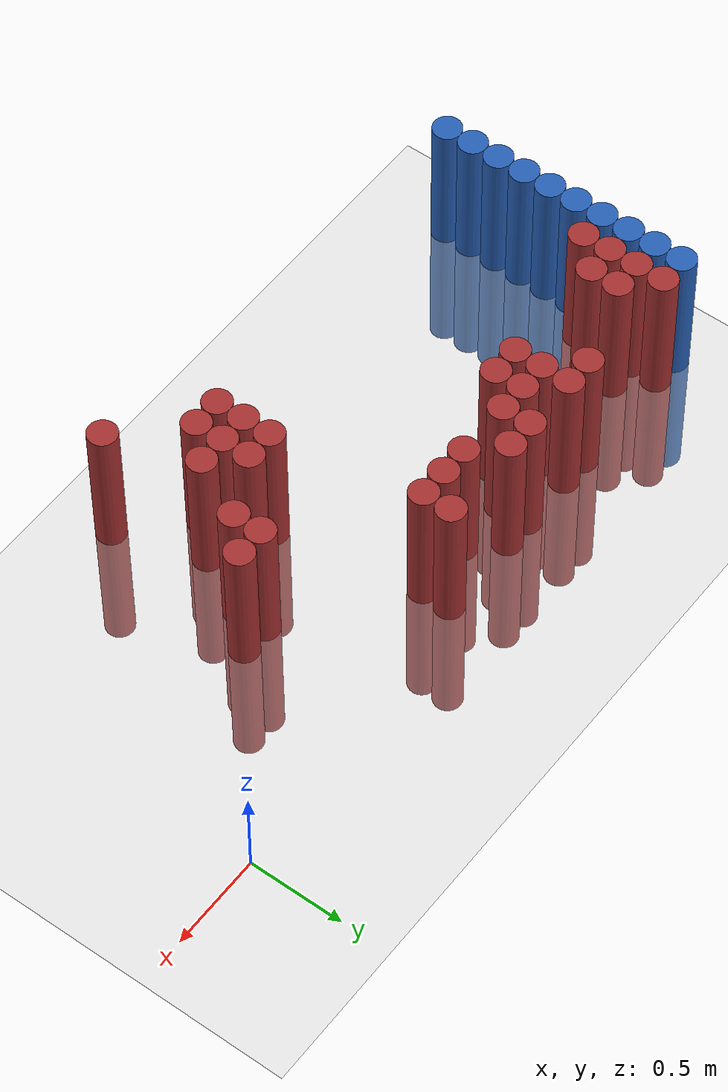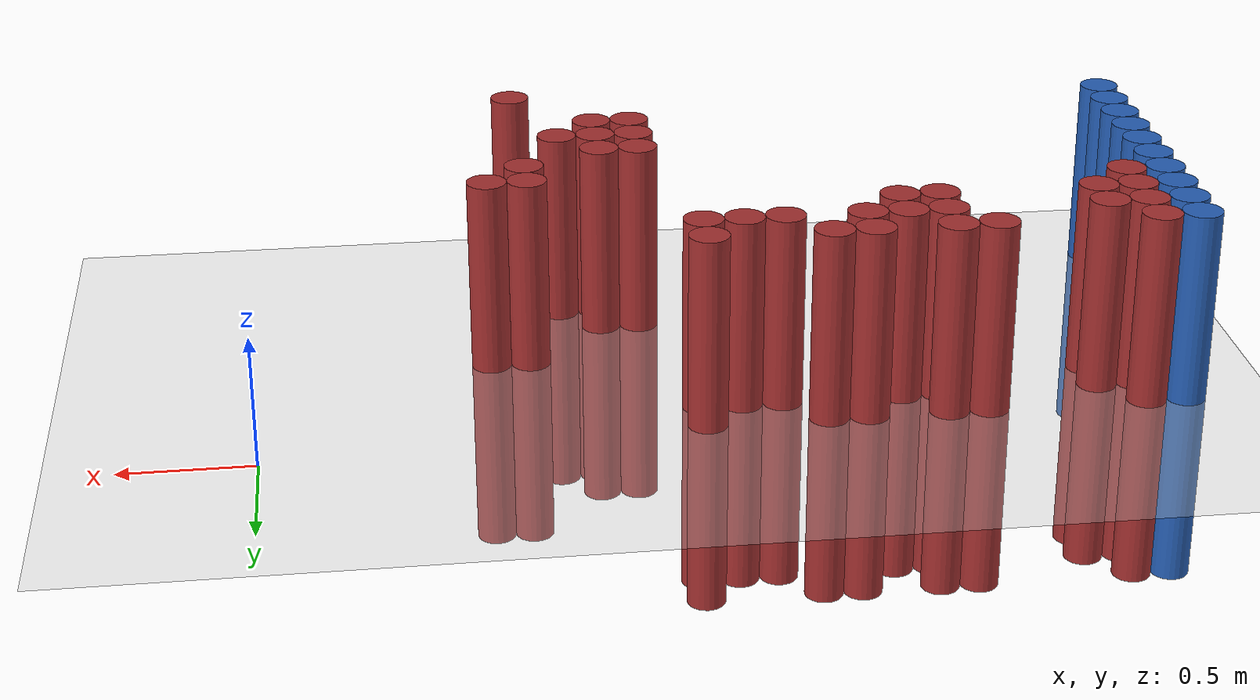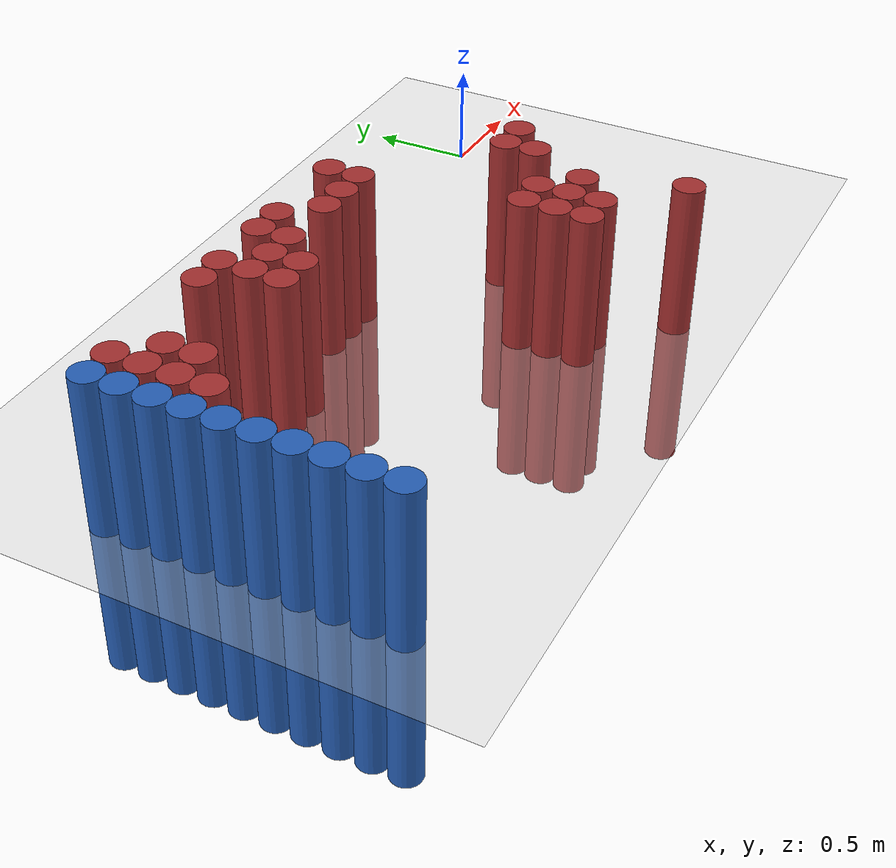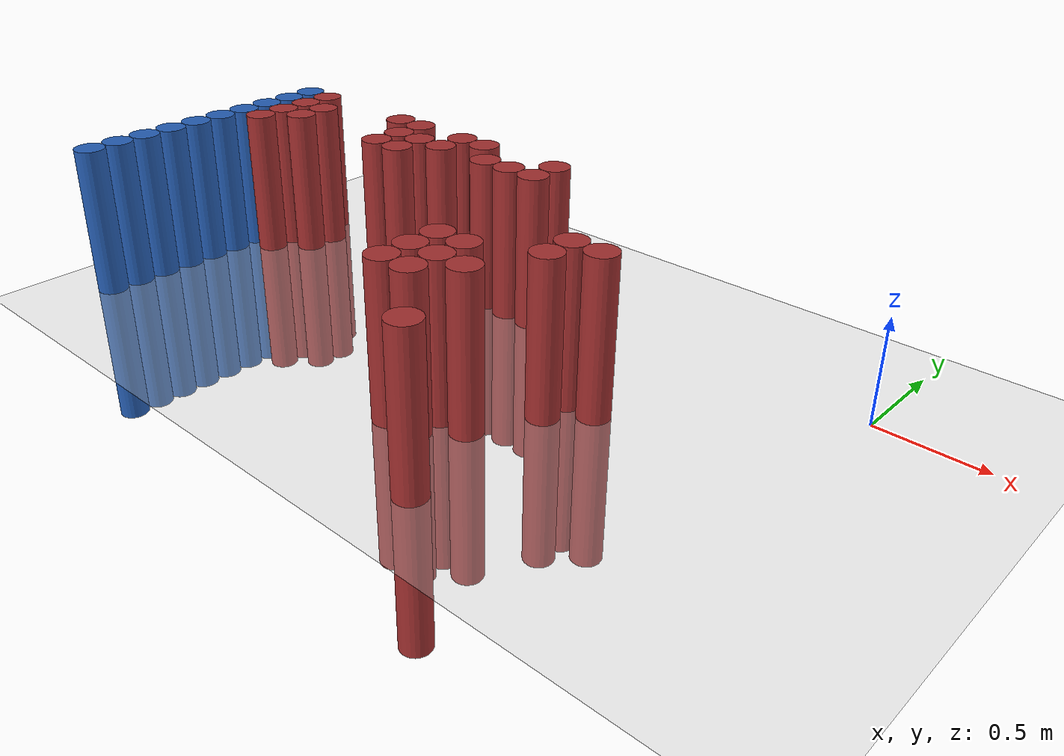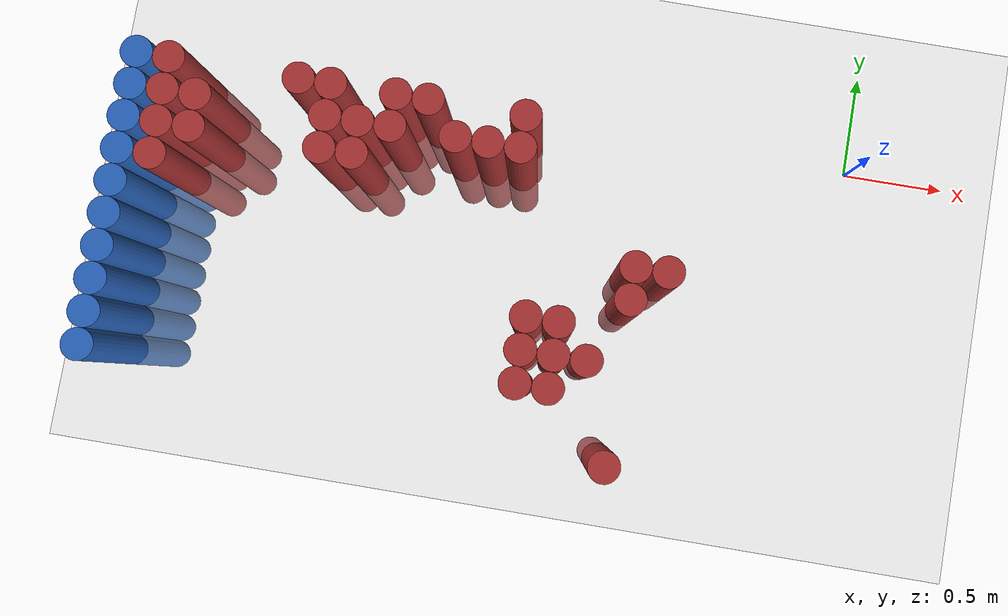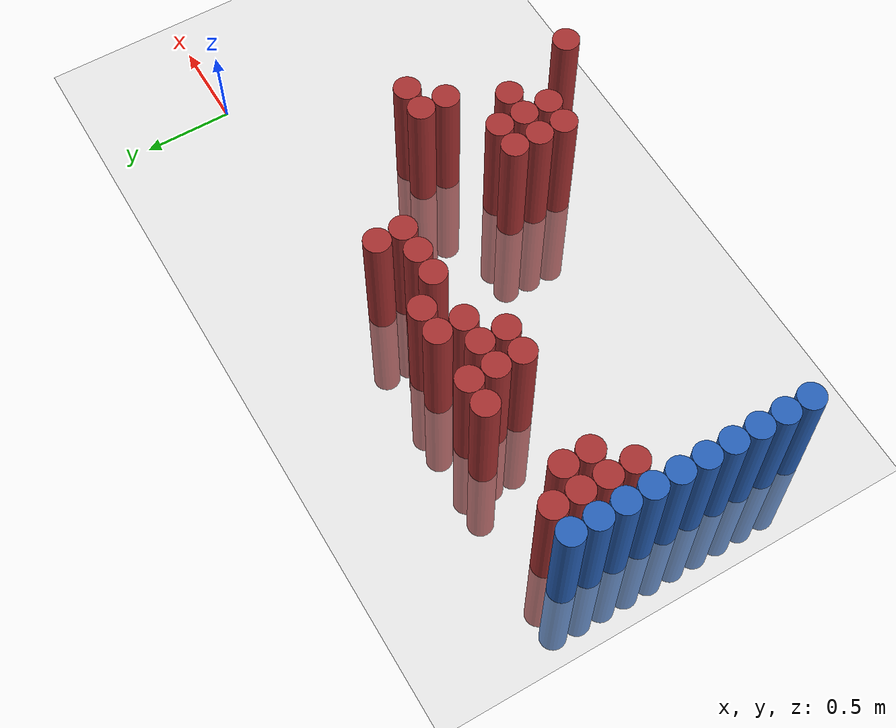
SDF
<sdf version="1.6">
 <world name="default">
  <model name="ground_plane">
   <static>1</static>
   <link name="link">
    <collision name="collision">
     <geometry><plane><normal>0 0 1</normal><size>100 100</size></plane></geometry>
     <surface><friction><ode><mu>100</mu><mu2>50</mu2></ode></friction></surface>
    </collision>
    <visual name="visual">
     <cast_shadows>0</cast_shadows>
     <geometry><plane><normal>0 0 1</normal><size>100 100</size></plane></geometry>
     <material>
      <script><uri>file://media/materials/scripts/gazebo.material</uri><name>Gazebo/Grey</name></script>
     </material>
    </visual>
   </link>
  </model>
  <model name="unit_cylinder_95">
   <static>1</static>
   <pose>-3.425000 -1.475000 0.000000 0.000000 0.000000 0.000000</pose>
   <link name="link">
    <inertial>
     <mass>1</mass>
     <inertia><ixx>0.145833</ixx><ixy>0</ixy><ixz>0</ixz><iyy>0.145833</iyy><iyz>0</iyz><izz>0.125</izz></inertia>
    </inertial>
    <collision name="collision">
     <geometry><cylinder><radius>0.075000</radius><length>1.5</length></cylinder></geometry>
    </collision>
    <visual name="visual">
     <geometry><cylinder><radius>0.075000</radius><length>1.5</length></cylinder></geometry>
     <material>
      <ambient>0.152000 0.379000 0.720000 1</ambient>
      <diffuse>0.152000 0.379000 0.720000 1</diffuse>
     </material>
     <material>
      <script><name>Gazebo/Grey</name><uri>file://media/materials/scripts/gazebo.material</uri></script>
     </material>
    </visual>
   </link>
  </model>
  <model name="unit_cylinder_97">
   <static>1</static>
   <pose>-3.425000 -1.325000 0.000000 0.000000 0.000000 0.000000</pose>
   <link name="link">
    <inertial>
     <mass>1</mass>
     <inertia><ixx>0.145833</ixx><ixy>0</ixy><ixz>0</ixz><iyy>0.145833</iyy><iyz>0</iyz><izz>0.125</izz></inertia>
    </inertial>
    <collision name="collision">
     <geometry><cylinder><radius>0.075000</radius><length>1.5</length></cylinder></geometry>
    </collision>
    <visual name="visual">
     <geometry><cylinder><radius>0.075000</radius><length>1.5</length></cylinder></geometry>
     <material>
      <ambient>0.152000 0.379000 0.720000 1</ambient>
      <diffuse>0.152000 0.379000 0.720000 1</diffuse>
     </material>
     <material>
      <script><name>Gazebo/Grey</name><uri>file://media/materials/scripts/gazebo.material</uri></script>
     </material>
    </visual>
   </link>
  </model>
  <model name="unit_cylinder_99">
   <static>1</static>
   <pose>-3.425000 -1.175000 0.000000 0.000000 0.000000 0.000000</pose>
   <link name="link">
    <inertial>
     <mass>1</mass>
     <inertia><ixx>0.145833</ixx><ixy>0</ixy><ixz>0</ixz><iyy>0.145833</iyy><iyz>0</iyz><izz>0.125</izz></inertia>
    </inertial>
    <collision name="collision">
     <geometry><cylinder><radius>0.075000</radius><length>1.5</length></cylinder></geometry>
    </collision>
    <visual name="visual">
     <geometry><cylinder><radius>0.075000</radius><length>1.5</length></cylinder></geometry>
     <material>
      <ambient>0.152000 0.379000 0.720000 1</ambient>
      <diffuse>0.152000 0.379000 0.720000 1</diffuse>
     </material>
     <material>
      <script><name>Gazebo/Grey</name><uri>file://media/materials/scripts/gazebo.material</uri></script>
     </material>
    </visual>
   </link>
  </model>
  <model name="unit_cylinder_101">
   <static>1</static>
   <pose>-3.425000 -1.025000 0.000000 0.000000 0.000000 0.000000</pose>
   <link name="link">
    <inertial>
     <mass>1</mass>
     <inertia><ixx>0.145833</ixx><ixy>0</ixy><ixz>0</ixz><iyy>0.145833</iyy><iyz>0</iyz><izz>0.125</izz></inertia>
    </inertial>
    <collision name="collision">
     <geometry><cylinder><radius>0.075000</radius><length>1.5</length></cylinder></geometry>
    </collision>
    <visual name="visual">
     <geometry><cylinder><radius>0.075000</radius><length>1.5</length></cylinder></geometry>
     <material>
      <ambient>0.152000 0.379000 0.720000 1</ambient>
      <diffuse>0.152000 0.379000 0.720000 1</diffuse>
     </material>
     <material>
      <script><name>Gazebo/Grey</name><uri>file://media/materials/scripts/gazebo.material</uri></script>
     </material>
    </visual>
   </link>
  </model>
  <model name="unit_cylinder_103">
   <static>1</static>
   <pose>-3.425000 -0.875000 0.000000 0.000000 0.000000 0.000000</pose>
   <link name="link">
    <inertial>
     <mass>1</mass>
     <inertia><ixx>0.145833</ixx><ixy>0</ixy><ixz>0</ixz><iyy>0.145833</iyy><iyz>0</iyz><izz>0.125</izz></inertia>
    </inertial>
    <collision name="collision">
     <geometry><cylinder><radius>0.075000</radius><length>1.5</length></cylinder></geometry>
    </collision>
    <visual name="visual">
     <geometry><cylinder><radius>0.075000</radius><length>1.5</length></cylinder></geometry>
     <material>
      <ambient>0.152000 0.379000 0.720000 1</ambient>
      <diffuse>0.152000 0.379000 0.720000 1</diffuse>
     </material>
     <material>
      <script><name>Gazebo/Grey</name><uri>file://media/materials/scripts/gazebo.material</uri></script>
     </material>
    </visual>
   </link>
  </model>
  <model name="unit_cylinder_105">
   <static>1</static>
   <pose>-3.425000 -0.725000 0.000000 0.000000 0.000000 0.000000</pose>
   <link name="link">
    <inertial>
     <mass>1</mass>
     <inertia><ixx>0.145833</ixx><ixy>0</ixy><ixz>0</ixz><iyy>0.145833</iyy><iyz>0</iyz><izz>0.125</izz></inertia>
    </inertial>
    <collision name="collision">
     <geometry><cylinder><radius>0.075000</radius><length>1.5</length></cylinder></geometry>
    </collision>
    <visual name="visual">
     <geometry><cylinder><radius>0.075000</radius><length>1.5</length></cylinder></geometry>
     <material>
      <ambient>0.152000 0.379000 0.720000 1</ambient>
      <diffuse>0.152000 0.379000 0.720000 1</diffuse>
     </material>
     <material>
      <script><name>Gazebo/Grey</name><uri>file://media/materials/scripts/gazebo.material</uri></script>
     </material>
    </visual>
   </link>
  </model>
  <model name="unit_cylinder_107">
   <static>1</static>
   <pose>-3.425000 -0.575000 0.000000 0.000000 0.000000 0.000000</pose>
   <link name="link">
    <inertial>
     <mass>1</mass>
     <inertia><ixx>0.145833</ixx><ixy>0</ixy><ixz>0</ixz><iyy>0.145833</iyy><iyz>0</iyz><izz>0.125</izz></inertia>
    </inertial>
    <collision name="collision">
     <geometry><cylinder><radius>0.075000</radius><length>1.5</length></cylinder></geometry>
    </collision>
    <visual name="visual">
     <geometry><cylinder><radius>0.075000</radius><length>1.5</length></cylinder></geometry>
     <material>
      <ambient>0.152000 0.379000 0.720000 1</ambient>
      <diffuse>0.152000 0.379000 0.720000 1</diffuse>
     </material>
     <material>
      <script><name>Gazebo/Grey</name><uri>file://media/materials/scripts/gazebo.material</uri></script>
     </material>
    </visual>
   </link>
  </model>
  <model name="unit_cylinder_109">
   <static>1</static>
   <pose>-3.425000 -0.425000 0.000000 0.000000 0.000000 0.000000</pose>
   <link name="link">
    <inertial>
     <mass>1</mass>
     <inertia><ixx>0.145833</ixx><ixy>0</ixy><ixz>0</ixz><iyy>0.145833</iyy><iyz>0</iyz><izz>0.125</izz></inertia>
    </inertial>
    <collision name="collision">
     <geometry><cylinder><radius>0.075000</radius><length>1.5</length></cylinder></geometry>
    </collision>
    <visual name="visual">
     <geometry><cylinder><radius>0.075000</radius><length>1.5</length></cylinder></geometry>
     <material>
      <ambient>0.152000 0.379000 0.720000 1</ambient>
      <diffuse>0.152000 0.379000 0.720000 1</diffuse>
     </material>
     <material>
      <script><name>Gazebo/Grey</name><uri>file://media/materials/scripts/gazebo.material</uri></script>
     </material>
    </visual>
   </link>
  </model>
  <model name="unit_cylinder_111">
   <static>1</static>
   <pose>-3.425000 -0.275000 0.000000 0.000000 0.000000 0.000000</pose>
   <link name="link">
    <inertial>
     <mass>1</mass>
     <inertia><ixx>0.145833</ixx><ixy>0</ixy><ixz>0</ixz><iyy>0.145833</iyy><iyz>0</iyz><izz>0.125</izz></inertia>
    </inertial>
    <collision name="collision">
     <geometry><cylinder><radius>0.075000</radius><length>1.5</length></cylinder></geometry>
    </collision>
    <visual name="visual">
     <geometry><cylinder><radius>0.075000</radius><length>1.5</length></cylinder></geometry>
     <material>
      <ambient>0.152000 0.379000 0.720000 1</ambient>
      <diffuse>0.152000 0.379000 0.720000 1</diffuse>
     </material>
     <material>
      <script><name>Gazebo/Grey</name><uri>file://media/materials/scripts/gazebo.material</uri></script>
     </material>
    </visual>
   </link>
  </model>
  <model name="unit_cylinder_113">
   <static>1</static>
   <pose>-3.425000 -0.125000 0.000000 0.000000 0.000000 0.000000</pose>
   <link name="link">
    <inertial>
     <mass>1</mass>
     <inertia><ixx>0.145833</ixx><ixy>0</ixy><ixz>0</ixz><iyy>0.145833</iyy><iyz>0</iyz><izz>0.125</izz></inertia>
    </inertial>
    <collision name="collision">
     <geometry><cylinder><radius>0.075000</radius><length>1.5</length></cylinder></geometry>
    </collision>
    <visual name="visual">
     <geometry><cylinder><radius>0.075000</radius><length>1.5</length></cylinder></geometry>
     <material>
      <ambient>0.152000 0.379000 0.720000 1</ambient>
      <diffuse>0.152000 0.379000 0.720000 1</diffuse>
     </material>
     <material>
      <script><name>Gazebo/Grey</name><uri>file://media/materials/scripts/gazebo.material</uri></script>
     </material>
    </visual>
   </link>
  </model>
  <model name="unit_cylinder_211">
   <static>1</static>
   <pose>-3.425000 -1.475000 0.000000 0.000000 0.000000 0.000000</pose>
   <link name="link">
    <inertial>
     <mass>1</mass>
     <inertia><ixx>0.145833</ixx><ixy>0</ixy><ixz>0</ixz><iyy>0.145833</iyy><iyz>0</iyz><izz>0.125</izz></inertia>
    </inertial>
    <collision name="collision">
     <geometry><cylinder><radius>0.075000</radius><length>1.5</length></cylinder></geometry>
    </collision>
    <visual name="visual">
     <geometry><cylinder><radius>0.075000</radius><length>1.5</length></cylinder></geometry>
     <material>
      <ambient>0.152000 0.379000 0.720000 1</ambient>
      <diffuse>0.152000 0.379000 0.720000 1</diffuse>
     </material>
     <material>
      <script><name>Gazebo/Grey</name><uri>file://media/materials/scripts/gazebo.material</uri></script>
     </material>
    </visual>
   </link>
  </model>
  <model name="unit_cylinder_212">
   <static>1</static>
   <pose>-3.425000 -1.325000 0.000000 0.000000 0.000000 0.000000</pose>
   <link name="link">
    <inertial>
     <mass>1</mass>
     <inertia><ixx>0.145833</ixx><ixy>0</ixy><ixz>0</ixz><iyy>0.145833</iyy><iyz>0</iyz><izz>0.125</izz></inertia>
    </inertial>
    <collision name="collision">
     <geometry><cylinder><radius>0.075000</radius><length>1.5</length></cylinder></geometry>
    </collision>
    <visual name="visual">
     <geometry><cylinder><radius>0.075000</radius><length>1.5</length></cylinder></geometry>
     <material>
      <ambient>0.152000 0.379000 0.720000 1</ambient>
      <diffuse>0.152000 0.379000 0.720000 1</diffuse>
     </material>
     <material>
      <script><name>Gazebo/Grey</name><uri>file://media/materials/scripts/gazebo.material</uri></script>
     </material>
    </visual>
   </link>
  </model>
  <model name="unit_cylinder_213">
   <static>1</static>
   <pose>-3.425000 -1.175000 0.000000 0.000000 0.000000 0.000000</pose>
   <link name="link">
    <inertial>
     <mass>1</mass>
     <inertia><ixx>0.145833</ixx><ixy>0</ixy><ixz>0</ixz><iyy>0.145833</iyy><iyz>0</iyz><izz>0.125</izz></inertia>
    </inertial>
    <collision name="collision">
     <geometry><cylinder><radius>0.075000</radius><length>1.5</length></cylinder></geometry>
    </collision>
    <visual name="visual">
     <geometry><cylinder><radius>0.075000</radius><length>1.5</length></cylinder></geometry>
     <material>
      <ambient>0.152000 0.379000 0.720000 1</ambient>
      <diffuse>0.152000 0.379000 0.720000 1</diffuse>
     </material>
     <material>
      <script><name>Gazebo/Grey</name><uri>file://media/materials/scripts/gazebo.material</uri></script>
     </material>
    </visual>
   </link>
  </model>
  <model name="unit_cylinder_214">
   <static>1</static>
   <pose>-3.425000 -1.025000 0.000000 0.000000 0.000000 0.000000</pose>
   <link name="link">
    <inertial>
     <mass>1</mass>
     <inertia><ixx>0.145833</ixx><ixy>0</ixy><ixz>0</ixz><iyy>0.145833</iyy><iyz>0</iyz><izz>0.125</izz></inertia>
    </inertial>
    <collision name="collision">
     <geometry><cylinder><radius>0.075000</radius><length>1.5</length></cylinder></geometry>
    </collision>
    <visual name="visual">
     <geometry><cylinder><radius>0.075000</radius><length>1.5</length></cylinder></geometry>
     <material>
      <ambient>0.152000 0.379000 0.720000 1</ambient>
      <diffuse>0.152000 0.379000 0.720000 1</diffuse>
     </material>
     <material>
      <script><name>Gazebo/Grey</name><uri>file://media/materials/scripts/gazebo.material</uri></script>
     </material>
    </visual>
   </link>
  </model>
  <model name="unit_cylinder_215">
   <static>1</static>
   <pose>-3.425000 -0.875000 0.000000 0.000000 0.000000 0.000000</pose>
   <link name="link">
    <inertial>
     <mass>1</mass>
     <inertia><ixx>0.145833</ixx><ixy>0</ixy><ixz>0</ixz><iyy>0.145833</iyy><iyz>0</iyz><izz>0.125</izz></inertia>
    </inertial>
    <collision name="collision">
     <geometry><cylinder><radius>0.075000</radius><length>1.5</length></cylinder></geometry>
    </collision>
    <visual name="visual">
     <geometry><cylinder><radius>0.075000</radius><length>1.5</length></cylinder></geometry>
     <material>
      <ambient>0.152000 0.379000 0.720000 1</ambient>
      <diffuse>0.152000 0.379000 0.720000 1</diffuse>
     </material>
     <material>
      <script><name>Gazebo/Grey</name><uri>file://media/materials/scripts/gazebo.material</uri></script>
     </material>
    </visual>
   </link>
  </model>
  <model name="unit_cylinder_216">
   <static>1</static>
   <pose>-3.425000 -0.725000 0.000000 0.000000 0.000000 0.000000</pose>
   <link name="link">
    <inertial>
     <mass>1</mass>
     <inertia><ixx>0.145833</ixx><ixy>0</ixy><ixz>0</ixz><iyy>0.145833</iyy><iyz>0</iyz><izz>0.125</izz></inertia>
    </inertial>
    <collision name="collision">
     <geometry><cylinder><radius>0.075000</radius><length>1.5</length></cylinder></geometry>
    </collision>
    <visual name="visual">
     <geometry><cylinder><radius>0.075000</radius><length>1.5</length></cylinder></geometry>
     <material>
      <ambient>0.152000 0.379000 0.720000 1</ambient>
      <diffuse>0.152000 0.379000 0.720000 1</diffuse>
     </material>
     <material>
      <script><name>Gazebo/Grey</name><uri>file://media/materials/scripts/gazebo.material</uri></script>
     </material>
    </visual>
   </link>
  </model>
  <model name="unit_cylinder_217">
   <static>1</static>
   <pose>-3.425000 -0.575000 0.000000 0.000000 0.000000 0.000000</pose>
   <link name="link">
    <inertial>
     <mass>1</mass>
     <inertia><ixx>0.145833</ixx><ixy>0</ixy><ixz>0</ixz><iyy>0.145833</iyy><iyz>0</iyz><izz>0.125</izz></inertia>
    </inertial>
    <collision name="collision">
     <geometry><cylinder><radius>0.075000</radius><length>1.5</length></cylinder></geometry>
    </collision>
    <visual name="visual">
     <geometry><cylinder><radius>0.075000</radius><length>1.5</length></cylinder></geometry>
     <material>
      <ambient>0.152000 0.379000 0.720000 1</ambient>
      <diffuse>0.152000 0.379000 0.720000 1</diffuse>
     </material>
     <material>
      <script><name>Gazebo/Grey</name><uri>file://media/materials/scripts/gazebo.material</uri></script>
     </material>
    </visual>
   </link>
  </model>
  <model name="unit_cylinder_218">
   <static>1</static>
   <pose>-3.425000 -0.425000 0.000000 0.000000 0.000000 0.000000</pose>
   <link name="link">
    <inertial>
     <mass>1</mass>
     <inertia><ixx>0.145833</ixx><ixy>0</ixy><ixz>0</ixz><iyy>0.145833</iyy><iyz>0</iyz><izz>0.125</izz></inertia>
    </inertial>
    <collision name="collision">
     <geometry><cylinder><radius>0.075000</radius><length>1.5</length></cylinder></geometry>
    </collision>
    <visual name="visual">
     <geometry><cylinder><radius>0.075000</radius><length>1.5</length></cylinder></geometry>
     <material>
      <ambient>0.152000 0.379000 0.720000 1</ambient>
      <diffuse>0.152000 0.379000 0.720000 1</diffuse>
     </material>
     <material>
      <script><name>Gazebo/Grey</name><uri>file://media/materials/scripts/gazebo.material</uri></script>
     </material>
    </visual>
   </link>
  </model>
  <model name="unit_cylinder_219">
   <static>1</static>
   <pose>-3.425000 -0.275000 0.000000 0.000000 0.000000 0.000000</pose>
   <link name="link">
    <inertial>
     <mass>1</mass>
     <inertia><ixx>0.145833</ixx><ixy>0</ixy><ixz>0</ixz><iyy>0.145833</iyy><iyz>0</iyz><izz>0.125</izz></inertia>
    </inertial>
    <collision name="collision">
     <geometry><cylinder><radius>0.075000</radius><length>1.5</length></cylinder></geometry>
    </collision>
    <visual name="visual">
     <geometry><cylinder><radius>0.075000</radius><length>1.5</length></cylinder></geometry>
     <material>
      <ambient>0.152000 0.379000 0.720000 1</ambient>
      <diffuse>0.152000 0.379000 0.720000 1</diffuse>
     </material>
     <material>
      <script><name>Gazebo/Grey</name><uri>file://media/materials/scripts/gazebo.material</uri></script>
     </material>
    </visual>
   </link>
  </model>
  <model name="unit_cylinder_220">
   <static>1</static>
   <pose>-3.425000 -0.125000 0.000000 0.000000 0.000000 0.000000</pose>
   <link name="link">
    <inertial>
     <mass>1</mass>
     <inertia><ixx>0.145833</ixx><ixy>0</ixy><ixz>0</ixz><iyy>0.145833</iyy><iyz>0</iyz><izz>0.125</izz></inertia>
    </inertial>
    <collision name="collision">
     <geometry><cylinder><radius>0.075000</radius><length>1.5</length></cylinder></geometry>
    </collision>
    <visual name="visual">
     <geometry><cylinder><radius>0.075000</radius><length>1.5</length></cylinder></geometry>
     <material>
      <ambient>0.152000 0.379000 0.720000 1</ambient>
      <diffuse>0.152000 0.379000 0.720000 1</diffuse>
     </material>
     <material>
      <script><name>Gazebo/Grey</name><uri>file://media/materials/scripts/gazebo.material</uri></script>
     </material>
    </visual>
   </link>
  </model>
  <model name="unit_cylinder_258">
   <static>1</static>
   <pose>-3.275000 -0.575000 0.000000 0.000000 0.000000 0.000000</pose>
   <link name="link">
    <inertial>
     <mass>1</mass>
     <inertia><ixx>0.145833</ixx><ixy>0</ixy><ixz>0</ixz><iyy>0.145833</iyy><iyz>0</iyz><izz>0.125</izz></inertia>
    </inertial>
    <collision name="collision">
     <geometry><cylinder><radius>0.075000</radius><length>1.5</length></cylinder></geometry>
    </collision>
    <visual name="visual">
     <geometry><cylinder><radius>0.075000</radius><length>1.5</length></cylinder></geometry>
     <material>
      <ambient>0.648000 0.192000 0.192000 1</ambient>
      <diffuse>0.648000 0.192000 0.192000 1</diffuse>
     </material>
     <material>
      <script><name>Gazebo/Grey</name><uri>file://media/materials/scripts/gazebo.material</uri></script>
     </material>
    </visual>
   </link>
  </model>
  <model name="unit_cylinder_259">
   <static>1</static>
   <pose>-3.275000 -0.425000 0.000000 0.000000 0.000000 0.000000</pose>
   <link name="link">
    <inertial>
     <mass>1</mass>
     <inertia><ixx>0.145833</ixx><ixy>0</ixy><ixz>0</ixz><iyy>0.145833</iyy><iyz>0</iyz><izz>0.125</izz></inertia>
    </inertial>
    <collision name="collision">
     <geometry><cylinder><radius>0.075000</radius><length>1.5</length></cylinder></geometry>
    </collision>
    <visual name="visual">
     <geometry><cylinder><radius>0.075000</radius><length>1.5</length></cylinder></geometry>
     <material>
      <ambient>0.648000 0.192000 0.192000 1</ambient>
      <diffuse>0.648000 0.192000 0.192000 1</diffuse>
     </material>
     <material>
      <script><name>Gazebo/Grey</name><uri>file://media/materials/scripts/gazebo.material</uri></script>
     </material>
    </visual>
   </link>
  </model>
  <model name="unit_cylinder_260">
   <static>1</static>
   <pose>-3.275000 -0.275000 0.000000 0.000000 0.000000 0.000000</pose>
   <link name="link">
    <inertial>
     <mass>1</mass>
     <inertia><ixx>0.145833</ixx><ixy>0</ixy><ixz>0</ixz><iyy>0.145833</iyy><iyz>0</iyz><izz>0.125</izz></inertia>
    </inertial>
    <collision name="collision">
     <geometry><cylinder><radius>0.075000</radius><length>1.5</length></cylinder></geometry>
    </collision>
    <visual name="visual">
     <geometry><cylinder><radius>0.075000</radius><length>1.5</length></cylinder></geometry>
     <material>
      <ambient>0.648000 0.192000 0.192000 1</ambient>
      <diffuse>0.648000 0.192000 0.192000 1</diffuse>
     </material>
     <material>
      <script><name>Gazebo/Grey</name><uri>file://media/materials/scripts/gazebo.material</uri></script>
     </material>
    </visual>
   </link>
  </model>
  <model name="unit_cylinder_261">
   <static>1</static>
   <pose>-3.275000 -0.125000 0.000000 0.000000 0.000000 0.000000</pose>
   <link name="link">
    <inertial>
     <mass>1</mass>
     <inertia><ixx>0.145833</ixx><ixy>0</ixy><ixz>0</ixz><iyy>0.145833</iyy><iyz>0</iyz><izz>0.125</izz></inertia>
    </inertial>
    <collision name="collision">
     <geometry><cylinder><radius>0.075000</radius><length>1.5</length></cylinder></geometry>
    </collision>
    <visual name="visual">
     <geometry><cylinder><radius>0.075000</radius><length>1.5</length></cylinder></geometry>
     <material>
      <ambient>0.648000 0.192000 0.192000 1</ambient>
      <diffuse>0.648000 0.192000 0.192000 1</diffuse>
     </material>
     <material>
      <script><name>Gazebo/Grey</name><uri>file://media/materials/scripts/gazebo.material</uri></script>
     </material>
    </visual>
   </link>
  </model>
  <model name="unit_cylinder_276">
   <static>1</static>
   <pose>-3.125000 -0.425000 0.000000 0.000000 0.000000 0.000000</pose>
   <link name="link">
    <inertial>
     <mass>1</mass>
     <inertia><ixx>0.145833</ixx><ixy>0</ixy><ixz>0</ixz><iyy>0.145833</iyy><iyz>0</iyz><izz>0.125</izz></inertia>
    </inertial>
    <collision name="collision">
     <geometry><cylinder><radius>0.075000</radius><length>1.5</length></cylinder></geometry>
    </collision>
    <visual name="visual">
     <geometry><cylinder><radius>0.075000</radius><length>1.5</length></cylinder></geometry>
     <material>
      <ambient>0.648000 0.192000 0.192000 1</ambient>
      <diffuse>0.648000 0.192000 0.192000 1</diffuse>
     </material>
     <material>
      <script><name>Gazebo/Grey</name><uri>file://media/materials/scripts/gazebo.material</uri></script>
     </material>
    </visual>
   </link>
  </model>
  <model name="unit_cylinder_277">
   <static>1</static>
   <pose>-3.125000 -0.275000 0.000000 0.000000 0.000000 0.000000</pose>
   <link name="link">
    <inertial>
     <mass>1</mass>
     <inertia><ixx>0.145833</ixx><ixy>0</ixy><ixz>0</ixz><iyy>0.145833</iyy><iyz>0</iyz><izz>0.125</izz></inertia>
    </inertial>
    <collision name="collision">
     <geometry><cylinder><radius>0.075000</radius><length>1.5</length></cylinder></geometry>
    </collision>
    <visual name="visual">
     <geometry><cylinder><radius>0.075000</radius><length>1.5</length></cylinder></geometry>
     <material>
      <ambient>0.648000 0.192000 0.192000 1</ambient>
      <diffuse>0.648000 0.192000 0.192000 1</diffuse>
     </material>
     <material>
      <script><name>Gazebo/Grey</name><uri>file://media/materials/scripts/gazebo.material</uri></script>
     </material>
    </visual>
   </link>
  </model>
  <model name="unit_cylinder_299">
   <static>1</static>
   <pose>-2.675000 -0.125000 0.000000 0.000000 0.000000 0.000000</pose>
   <link name="link">
    <inertial>
     <mass>1</mass>
     <inertia><ixx>0.145833</ixx><ixy>0</ixy><ixz>0</ixz><iyy>0.145833</iyy><iyz>0</iyz><izz>0.125</izz></inertia>
    </inertial>
    <collision name="collision">
     <geometry><cylinder><radius>0.075000</radius><length>1.5</length></cylinder></geometry>
    </collision>
    <visual name="visual">
     <geometry><cylinder><radius>0.075000</radius><length>1.5</length></cylinder></geometry>
     <material>
      <ambient>0.648000 0.192000 0.192000 1</ambient>
      <diffuse>0.648000 0.192000 0.192000 1</diffuse>
     </material>
     <material>
      <script><name>Gazebo/Grey</name><uri>file://media/materials/scripts/gazebo.material</uri></script>
     </material>
    </visual>
   </link>
  </model>
  <model name="unit_cylinder_311">
   <static>1</static>
   <pose>-2.525000 -0.425000 0.000000 0.000000 0.000000 0.000000</pose>
   <link name="link">
    <inertial>
     <mass>1</mass>
     <inertia><ixx>0.145833</ixx><ixy>0</ixy><ixz>0</ixz><iyy>0.145833</iyy><iyz>0</iyz><izz>0.125</izz></inertia>
    </inertial>
    <collision name="collision">
     <geometry><cylinder><radius>0.075000</radius><length>1.5</length></cylinder></geometry>
    </collision>
    <visual name="visual">
     <geometry><cylinder><radius>0.075000</radius><length>1.5</length></cylinder></geometry>
     <material>
      <ambient>0.648000 0.192000 0.192000 1</ambient>
      <diffuse>0.648000 0.192000 0.192000 1</diffuse>
     </material>
     <material>
      <script><name>Gazebo/Grey</name><uri>file://media/materials/scripts/gazebo.material</uri></script>
     </material>
    </visual>
   </link>
  </model>
  <model name="unit_cylinder_312">
   <static>1</static>
   <pose>-2.525000 -0.275000 0.000000 0.000000 0.000000 0.000000</pose>
   <link name="link">
    <inertial>
     <mass>1</mass>
     <inertia><ixx>0.145833</ixx><ixy>0</ixy><ixz>0</ixz><iyy>0.145833</iyy><iyz>0</iyz><izz>0.125</izz></inertia>
    </inertial>
    <collision name="collision">
     <geometry><cylinder><radius>0.075000</radius><length>1.5</length></cylinder></geometry>
    </collision>
    <visual name="visual">
     <geometry><cylinder><radius>0.075000</radius><length>1.5</length></cylinder></geometry>
     <material>
      <ambient>0.648000 0.192000 0.192000 1</ambient>
      <diffuse>0.648000 0.192000 0.192000 1</diffuse>
     </material>
     <material>
      <script><name>Gazebo/Grey</name><uri>file://media/materials/scripts/gazebo.material</uri></script>
     </material>
    </visual>
   </link>
  </model>
  <model name="unit_cylinder_313">
   <static>1</static>
   <pose>-2.525000 -0.125000 0.000000 0.000000 0.000000 0.000000</pose>
   <link name="link">
    <inertial>
     <mass>1</mass>
     <inertia><ixx>0.145833</ixx><ixy>0</ixy><ixz>0</ixz><iyy>0.145833</iyy><iyz>0</iyz><izz>0.125</izz></inertia>
    </inertial>
    <collision name="collision">
     <geometry><cylinder><radius>0.075000</radius><length>1.5</length></cylinder></geometry>
    </collision>
    <visual name="visual">
     <geometry><cylinder><radius>0.075000</radius><length>1.5</length></cylinder></geometry>
     <material>
      <ambient>0.648000 0.192000 0.192000 1</ambient>
      <diffuse>0.648000 0.192000 0.192000 1</diffuse>
     </material>
     <material>
      <script><name>Gazebo/Grey</name><uri>file://media/materials/scripts/gazebo.material</uri></script>
     </material>
    </visual>
   </link>
  </model>
  <model name="unit_cylinder_325">
   <static>1</static>
   <pose>-2.375000 -0.425000 0.000000 0.000000 0.000000 0.000000</pose>
   <link name="link">
    <inertial>
     <mass>1</mass>
     <inertia><ixx>0.145833</ixx><ixy>0</ixy><ixz>0</ixz><iyy>0.145833</iyy><iyz>0</iyz><izz>0.125</izz></inertia>
    </inertial>
    <collision name="collision">
     <geometry><cylinder><radius>0.075000</radius><length>1.5</length></cylinder></geometry>
    </collision>
    <visual name="visual">
     <geometry><cylinder><radius>0.075000</radius><length>1.5</length></cylinder></geometry>
     <material>
      <ambient>0.648000 0.192000 0.192000 1</ambient>
      <diffuse>0.648000 0.192000 0.192000 1</diffuse>
     </material>
     <material>
      <script><name>Gazebo/Grey</name><uri>file://media/materials/scripts/gazebo.material</uri></script>
     </material>
    </visual>
   </link>
  </model>
  <model name="unit_cylinder_326">
   <static>1</static>
   <pose>-2.375000 -0.275000 0.000000 0.000000 0.000000 0.000000</pose>
   <link name="link">
    <inertial>
     <mass>1</mass>
     <inertia><ixx>0.145833</ixx><ixy>0</ixy><ixz>0</ixz><iyy>0.145833</iyy><iyz>0</iyz><izz>0.125</izz></inertia>
    </inertial>
    <collision name="collision">
     <geometry><cylinder><radius>0.075000</radius><length>1.5</length></cylinder></geometry>
    </collision>
    <visual name="visual">
     <geometry><cylinder><radius>0.075000</radius><length>1.5</length></cylinder></geometry>
     <material>
      <ambient>0.648000 0.192000 0.192000 1</ambient>
      <diffuse>0.648000 0.192000 0.192000 1</diffuse>
     </material>
     <material>
      <script><name>Gazebo/Grey</name><uri>file://media/materials/scripts/gazebo.material</uri></script>
     </material>
    </visual>
   </link>
  </model>
  <model name="unit_cylinder_338">
   <static>1</static>
   <pose>-2.225000 -0.275000 0.000000 0.000000 0.000000 0.000000</pose>
   <link name="link">
    <inertial>
     <mass>1</mass>
     <inertia><ixx>0.145833</ixx><ixy>0</ixy><ixz>0</ixz><iyy>0.145833</iyy><iyz>0</iyz><izz>0.125</izz></inertia>
    </inertial>
    <collision name="collision">
     <geometry><cylinder><radius>0.075000</radius><length>1.5</length></cylinder></geometry>
    </collision>
    <visual name="visual">
     <geometry><cylinder><radius>0.075000</radius><length>1.5</length></cylinder></geometry>
     <material>
      <ambient>0.648000 0.192000 0.192000 1</ambient>
      <diffuse>0.648000 0.192000 0.192000 1</diffuse>
     </material>
     <material>
      <script><name>Gazebo/Grey</name><uri>file://media/materials/scripts/gazebo.material</uri></script>
     </material>
    </visual>
   </link>
  </model>
  <model name="unit_cylinder_339">
   <static>1</static>
   <pose>-2.225000 -0.125000 0.000000 0.000000 0.000000 0.000000</pose>
   <link name="link">
    <inertial>
     <mass>1</mass>
     <inertia><ixx>0.145833</ixx><ixy>0</ixy><ixz>0</ixz><iyy>0.145833</iyy><iyz>0</iyz><izz>0.125</izz></inertia>
    </inertial>
    <collision name="collision">
     <geometry><cylinder><radius>0.075000</radius><length>1.5</length></cylinder></geometry>
    </collision>
    <visual name="visual">
     <geometry><cylinder><radius>0.075000</radius><length>1.5</length></cylinder></geometry>
     <material>
      <ambient>0.648000 0.192000 0.192000 1</ambient>
      <diffuse>0.648000 0.192000 0.192000 1</diffuse>
     </material>
     <material>
      <script><name>Gazebo/Grey</name><uri>file://media/materials/scripts/gazebo.material</uri></script>
     </material>
    </visual>
   </link>
  </model>
  <model name="unit_cylinder_348">
   <static>1</static>
   <pose>-2.075000 -0.125000 0.000000 0.000000 0.000000 0.000000</pose>
   <link name="link">
    <inertial>
     <mass>1</mass>
     <inertia><ixx>0.145833</ixx><ixy>0</ixy><ixz>0</ixz><iyy>0.145833</iyy><iyz>0</iyz><izz>0.125</izz></inertia>
    </inertial>
    <collision name="collision">
     <geometry><cylinder><radius>0.075000</radius><length>1.5</length></cylinder></geometry>
    </collision>
    <visual name="visual">
     <geometry><cylinder><radius>0.075000</radius><length>1.5</length></cylinder></geometry>
     <material>
      <ambient>0.648000 0.192000 0.192000 1</ambient>
      <diffuse>0.648000 0.192000 0.192000 1</diffuse>
     </material>
     <material>
      <script><name>Gazebo/Grey</name><uri>file://media/materials/scripts/gazebo.material</uri></script>
     </material>
    </visual>
   </link>
  </model>
  <model name="unit_cylinder_357">
   <static>1</static>
   <pose>-1.925000 -0.275000 0.000000 0.000000 0.000000 0.000000</pose>
   <link name="link">
    <inertial>
     <mass>1</mass>
     <inertia><ixx>0.145833</ixx><ixy>0</ixy><ixz>0</ixz><iyy>0.145833</iyy><iyz>0</iyz><izz>0.125</izz></inertia>
    </inertial>
    <collision name="collision">
     <geometry><cylinder><radius>0.075000</radius><length>1.5</length></cylinder></geometry>
    </collision>
    <visual name="visual">
     <geometry><cylinder><radius>0.075000</radius><length>1.5</length></cylinder></geometry>
     <material>
      <ambient>0.648000 0.192000 0.192000 1</ambient>
      <diffuse>0.648000 0.192000 0.192000 1</diffuse>
     </material>
     <material>
      <script><name>Gazebo/Grey</name><uri>file://media/materials/scripts/gazebo.material</uri></script>
     </material>
    </visual>
   </link>
  </model>
  <model name="unit_cylinder_363">
   <static>1</static>
   <pose>-1.775000 -0.275000 0.000000 0.000000 0.000000 0.000000</pose>
   <link name="link">
    <inertial>
     <mass>1</mass>
     <inertia><ixx>0.145833</ixx><ixy>0</ixy><ixz>0</ixz><iyy>0.145833</iyy><iyz>0</iyz><izz>0.125</izz></inertia>
    </inertial>
    <collision name="collision">
     <geometry><cylinder><radius>0.075000</radius><length>1.5</length></cylinder></geometry>
    </collision>
    <visual name="visual">
     <geometry><cylinder><radius>0.075000</radius><length>1.5</length></cylinder></geometry>
     <material>
      <ambient>0.648000 0.192000 0.192000 1</ambient>
      <diffuse>0.648000 0.192000 0.192000 1</diffuse>
     </material>
     <material>
      <script><name>Gazebo/Grey</name><uri>file://media/materials/scripts/gazebo.material</uri></script>
     </material>
    </visual>
   </link>
  </model>
  <model name="unit_cylinder_365">
   <static>1</static>
   <pose>-1.625000 -0.275000 0.000000 0.000000 0.000000 0.000000</pose>
   <link name="link">
    <inertial>
     <mass>1</mass>
     <inertia><ixx>0.145833</ixx><ixy>0</ixy><ixz>0</ixz><iyy>0.145833</iyy><iyz>0</iyz><izz>0.125</izz></inertia>
    </inertial>
    <collision name="collision">
     <geometry><cylinder><radius>0.075000</radius><length>1.5</length></cylinder></geometry>
    </collision>
    <visual name="visual">
     <geometry><cylinder><radius>0.075000</radius><length>1.5</length></cylinder></geometry>
     <material>
      <ambient>0.648000 0.192000 0.192000 1</ambient>
      <diffuse>0.648000 0.192000 0.192000 1</diffuse>
     </material>
     <material>
      <script><name>Gazebo/Grey</name><uri>file://media/materials/scripts/gazebo.material</uri></script>
     </material>
    </visual>
   </link>
  </model>
  <model name="unit_cylinder_366">
   <static>1</static>
   <pose>-1.625000 -0.125000 0.000000 0.000000 0.000000 0.000000</pose>
   <link name="link">
    <inertial>
     <mass>1</mass>
     <inertia><ixx>0.145833</ixx><ixy>0</ixy><ixz>0</ixz><iyy>0.145833</iyy><iyz>0</iyz><izz>0.125</izz></inertia>
    </inertial>
    <collision name="collision">
     <geometry><cylinder><radius>0.075000</radius><length>1.5</length></cylinder></geometry>
    </collision>
    <visual name="visual">
     <geometry><cylinder><radius>0.075000</radius><length>1.5</length></cylinder></geometry>
     <material>
      <ambient>0.648000 0.192000 0.192000 1</ambient>
      <diffuse>0.648000 0.192000 0.192000 1</diffuse>
     </material>
     <material>
      <script><name>Gazebo/Grey</name><uri>file://media/materials/scripts/gazebo.material</uri></script>
     </material>
    </visual>
   </link>
  </model>
  <model name="unit_cylinder_367">
   <static>1</static>
   <pose>-1.475000 -1.325000 0.000000 0.000000 0.000000 0.000000</pose>
   <link name="link">
    <inertial>
     <mass>1</mass>
     <inertia><ixx>0.145833</ixx><ixy>0</ixy><ixz>0</ixz><iyy>0.145833</iyy><iyz>0</iyz><izz>0.125</izz></inertia>
    </inertial>
    <collision name="collision">
     <geometry><cylinder><radius>0.075000</radius><length>1.5</length></cylinder></geometry>
    </collision>
    <visual name="visual">
     <geometry><cylinder><radius>0.075000</radius><length>1.5</length></cylinder></geometry>
     <material>
      <ambient>0.648000 0.192000 0.192000 1</ambient>
      <diffuse>0.648000 0.192000 0.192000 1</diffuse>
     </material>
     <material>
      <script><name>Gazebo/Grey</name><uri>file://media/materials/scripts/gazebo.material</uri></script>
     </material>
    </visual>
   </link>
  </model>
  <model name="unit_cylinder_368">
   <static>1</static>
   <pose>-1.475000 -1.175000 0.000000 0.000000 0.000000 0.000000</pose>
   <link name="link">
    <inertial>
     <mass>1</mass>
     <inertia><ixx>0.145833</ixx><ixy>0</ixy><ixz>0</ixz><iyy>0.145833</iyy><iyz>0</iyz><izz>0.125</izz></inertia>
    </inertial>
    <collision name="collision">
     <geometry><cylinder><radius>0.075000</radius><length>1.5</length></cylinder></geometry>
    </collision>
    <visual name="visual">
     <geometry><cylinder><radius>0.075000</radius><length>1.5</length></cylinder></geometry>
     <material>
      <ambient>0.648000 0.192000 0.192000 1</ambient>
      <diffuse>0.648000 0.192000 0.192000 1</diffuse>
     </material>
     <material>
      <script><name>Gazebo/Grey</name><uri>file://media/materials/scripts/gazebo.material</uri></script>
     </material>
    </visual>
   </link>
  </model>
  <model name="unit_cylinder_369">
   <static>1</static>
   <pose>-1.475000 -1.025000 0.000000 0.000000 0.000000 0.000000</pose>
   <link name="link">
    <inertial>
     <mass>1</mass>
     <inertia><ixx>0.145833</ixx><ixy>0</ixy><ixz>0</ixz><iyy>0.145833</iyy><iyz>0</iyz><izz>0.125</izz></inertia>
    </inertial>
    <collision name="collision">
     <geometry><cylinder><radius>0.075000</radius><length>1.5</length></cylinder></geometry>
    </collision>
    <visual name="visual">
     <geometry><cylinder><radius>0.075000</radius><length>1.5</length></cylinder></geometry>
     <material>
      <ambient>0.648000 0.192000 0.192000 1</ambient>
      <diffuse>0.648000 0.192000 0.192000 1</diffuse>
     </material>
     <material>
      <script><name>Gazebo/Grey</name><uri>file://media/materials/scripts/gazebo.material</uri></script>
     </material>
    </visual>
   </link>
  </model>
  <model name="unit_cylinder_371">
   <static>1</static>
   <pose>-1.325000 -1.325000 0.000000 0.000000 0.000000 0.000000</pose>
   <link name="link">
    <inertial>
     <mass>1</mass>
     <inertia><ixx>0.145833</ixx><ixy>0</ixy><ixz>0</ixz><iyy>0.145833</iyy><iyz>0</iyz><izz>0.125</izz></inertia>
    </inertial>
    <collision name="collision">
     <geometry><cylinder><radius>0.075000</radius><length>1.5</length></cylinder></geometry>
    </collision>
    <visual name="visual">
     <geometry><cylinder><radius>0.075000</radius><length>1.5</length></cylinder></geometry>
     <material>
      <ambient>0.648000 0.192000 0.192000 1</ambient>
      <diffuse>0.648000 0.192000 0.192000 1</diffuse>
     </material>
     <material>
      <script><name>Gazebo/Grey</name><uri>file://media/materials/scripts/gazebo.material</uri></script>
     </material>
    </visual>
   </link>
  </model>
  <model name="unit_cylinder_372">
   <static>1</static>
   <pose>-1.325000 -1.175000 0.000000 0.000000 0.000000 0.000000</pose>
   <link name="link">
    <inertial>
     <mass>1</mass>
     <inertia><ixx>0.145833</ixx><ixy>0</ixy><ixz>0</ixz><iyy>0.145833</iyy><iyz>0</iyz><izz>0.125</izz></inertia>
    </inertial>
    <collision name="collision">
     <geometry><cylinder><radius>0.075000</radius><length>1.5</length></cylinder></geometry>
    </collision>
    <visual name="visual">
     <geometry><cylinder><radius>0.075000</radius><length>1.5</length></cylinder></geometry>
     <material>
      <ambient>0.648000 0.192000 0.192000 1</ambient>
      <diffuse>0.648000 0.192000 0.192000 1</diffuse>
     </material>
     <material>
      <script><name>Gazebo/Grey</name><uri>file://media/materials/scripts/gazebo.material</uri></script>
     </material>
    </visual>
   </link>
  </model>
  <model name="unit_cylinder_373">
   <static>1</static>
   <pose>-1.325000 -1.025000 0.000000 0.000000 0.000000 0.000000</pose>
   <link name="link">
    <inertial>
     <mass>1</mass>
     <inertia><ixx>0.145833</ixx><ixy>0</ixy><ixz>0</ixz><iyy>0.145833</iyy><iyz>0</iyz><izz>0.125</izz></inertia>
    </inertial>
    <collision name="collision">
     <geometry><cylinder><radius>0.075000</radius><length>1.5</length></cylinder></geometry>
    </collision>
    <visual name="visual">
     <geometry><cylinder><radius>0.075000</radius><length>1.5</length></cylinder></geometry>
     <material>
      <ambient>0.648000 0.192000 0.192000 1</ambient>
      <diffuse>0.648000 0.192000 0.192000 1</diffuse>
     </material>
     <material>
      <script><name>Gazebo/Grey</name><uri>file://media/materials/scripts/gazebo.material</uri></script>
     </material>
    </visual>
   </link>
  </model>
  <model name="unit_cylinder_379">
   <static>1</static>
   <pose>-1.175000 -1.175000 0.000000 0.000000 0.000000 0.000000</pose>
   <link name="link">
    <inertial>
     <mass>1</mass>
     <inertia><ixx>0.145833</ixx><ixy>0</ixy><ixz>0</ixz><iyy>0.145833</iyy><iyz>0</iyz><izz>0.125</izz></inertia>
    </inertial>
    <collision name="collision">
     <geometry><cylinder><radius>0.075000</radius><length>1.5</length></cylinder></geometry>
    </collision>
    <visual name="visual">
     <geometry><cylinder><radius>0.075000</radius><length>1.5</length></cylinder></geometry>
     <material>
      <ambient>0.648000 0.192000 0.192000 1</ambient>
      <diffuse>0.648000 0.192000 0.192000 1</diffuse>
     </material>
     <material>
      <script><name>Gazebo/Grey</name><uri>file://media/materials/scripts/gazebo.material</uri></script>
     </material>
    </visual>
   </link>
  </model>
  <model name="unit_cylinder_387">
   <static>1</static>
   <pose>-1.025000 -1.625000 0.000000 0.000000 0.000000 0.000000</pose>
   <link name="link">
    <inertial>
     <mass>1</mass>
     <inertia><ixx>0.145833</ixx><ixy>0</ixy><ixz>0</ixz><iyy>0.145833</iyy><iyz>0</iyz><izz>0.125</izz></inertia>
    </inertial>
    <collision name="collision">
     <geometry><cylinder><radius>0.075000</radius><length>1.5</length></cylinder></geometry>
    </collision>
    <visual name="visual">
     <geometry><cylinder><radius>0.075000</radius><length>1.5</length></cylinder></geometry>
     <material>
      <ambient>0.648000 0.192000 0.192000 1</ambient>
      <diffuse>0.648000 0.192000 0.192000 1</diffuse>
     </material>
     <material>
      <script><name>Gazebo/Grey</name><uri>file://media/materials/scripts/gazebo.material</uri></script>
     </material>
    </visual>
   </link>
  </model>
  <model name="unit_cylinder_388">
   <static>1</static>
   <pose>-1.025000 -0.875000 0.000000 0.000000 0.000000 0.000000</pose>
   <link name="link">
    <inertial>
     <mass>1</mass>
     <inertia><ixx>0.145833</ixx><ixy>0</ixy><ixz>0</ixz><iyy>0.145833</iyy><iyz>0</iyz><izz>0.125</izz></inertia>
    </inertial>
    <collision name="collision">
     <geometry><cylinder><radius>0.075000</radius><length>1.5</length></cylinder></geometry>
    </collision>
    <visual name="visual">
     <geometry><cylinder><radius>0.075000</radius><length>1.5</length></cylinder></geometry>
     <material>
      <ambient>0.648000 0.192000 0.192000 1</ambient>
      <diffuse>0.648000 0.192000 0.192000 1</diffuse>
     </material>
     <material>
      <script><name>Gazebo/Grey</name><uri>file://media/materials/scripts/gazebo.material</uri></script>
     </material>
    </visual>
   </link>
  </model>
  <model name="unit_cylinder_389">
   <static>1</static>
   <pose>-1.025000 -0.725000 0.000000 0.000000 0.000000 0.000000</pose>
   <link name="link">
    <inertial>
     <mass>1</mass>
     <inertia><ixx>0.145833</ixx><ixy>0</ixy><ixz>0</ixz><iyy>0.145833</iyy><iyz>0</iyz><izz>0.125</izz></inertia>
    </inertial>
    <collision name="collision">
     <geometry><cylinder><radius>0.075000</radius><length>1.5</length></cylinder></geometry>
    </collision>
    <visual name="visual">
     <geometry><cylinder><radius>0.075000</radius><length>1.5</length></cylinder></geometry>
     <material>
      <ambient>0.648000 0.192000 0.192000 1</ambient>
      <diffuse>0.648000 0.192000 0.192000 1</diffuse>
     </material>
     <material>
      <script><name>Gazebo/Grey</name><uri>file://media/materials/scripts/gazebo.material</uri></script>
     </material>
    </visual>
   </link>
  </model>
  <model name="unit_cylinder_394">
   <static>1</static>
   <pose>-0.875000 -0.725000 0.000000 0.000000 0.000000 0.000000</pose>
   <link name="link">
    <inertial>
     <mass>1</mass>
     <inertia><ixx>0.145833</ixx><ixy>0</ixy><ixz>0</ixz><iyy>0.145833</iyy><iyz>0</iyz><izz>0.125</izz></inertia>
    </inertial>
    <collision name="collision">
     <geometry><cylinder><radius>0.075000</radius><length>1.5</length></cylinder></geometry>
    </collision>
    <visual name="visual">
     <geometry><cylinder><radius>0.075000</radius><length>1.5</length></cylinder></geometry>
     <material>
      <ambient>0.648000 0.192000 0.192000 1</ambient>
      <diffuse>0.648000 0.192000 0.192000 1</diffuse>
     </material>
     <material>
      <script><name>Gazebo/Grey</name><uri>file://media/materials/scripts/gazebo.material</uri></script>
     </material>
    </visual>
   </link>
  </model>
 </world>
</sdf>
